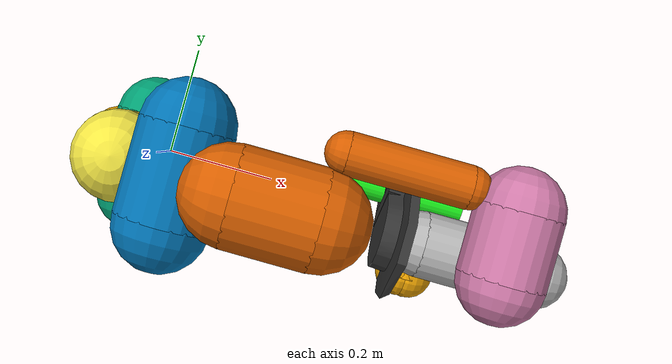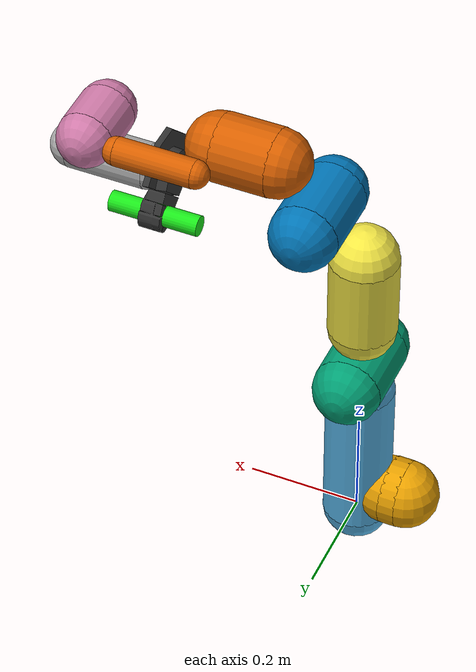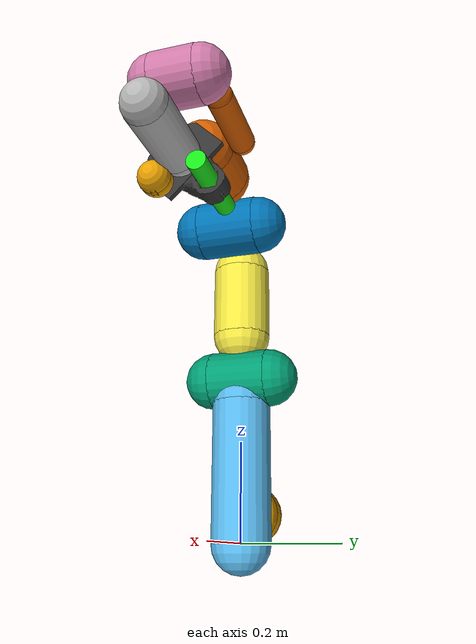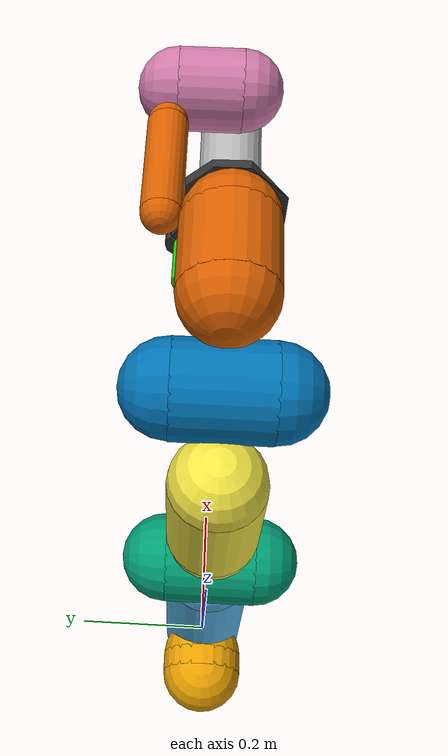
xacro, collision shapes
<?xml version="1.0" encoding="utf-8"?>
<robot xmlns:xacro="http://www.ros.org/wiki/xacro" name="panda">

  <xacro:include filename="$(find franka_description)/robots/panda_arm.urdf.xacro"/>

  <xacro:include filename="$(find reorientbot_ros)/robots/drl/suction.xacro"/>
  <xacro:suction_gripper ns="panda" rpy="${pi} 0 ${-pi/4}" xyz="0 0 0.0065" connected_to="panda_link8"/>

</robot>

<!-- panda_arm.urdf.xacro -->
<robot xmlns:xacro="http://www.ros.org/wiki/xacro" name="panda">
  <xacro:include filename="$(find franka_description)/robots/panda_arm.xacro" />
  <xacro:panda_arm safety_distance="0.00"/>
</robot>

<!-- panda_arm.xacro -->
<robot xmlns:xacro="http://www.ros.org/wiki/xacro" name="panda">
  <!-- safety_distance: Minimum safety distance in [m] by which the collision volumes are expanded and which is enforced during robot motions -->
  <!-- arm_id: Namespace of the panda arm. Serves to differentiate between arms in case of multiple instances. -->
  <xacro:macro name="panda_arm" params="arm_id:='panda' description_pkg:='franka_description' connected_to:='' xyz:='0 0 0' rpy:='0 0 0' safety_distance:=0">
    <xacro:unless value="${not connected_to}">
      <joint name="${arm_id}_joint_${connected_to}" type="fixed">
        <parent link="${connected_to}"/>
        <child link="${arm_id}_link0"/>
        <origin rpy="${rpy}" xyz="${xyz}"/>
      </joint>
    </xacro:unless>
    <link name="${arm_id}_link0">
      <visual>
        <geometry>
          <mesh filename="package://${description_pkg}/meshes/visual/link0.dae"/>
        </geometry>
      </visual>
      <collision>
        <origin xyz="-0.075 0 0.06" rpy="0 ${pi/2} 0"/>
        <geometry>
          <cylinder radius="${0.06+safety_distance}" length="0.03" />
        </geometry>
      </collision>
      <collision>
        <origin xyz="-0.06 0 0.06" rpy="0 0 0"/>
        <geometry>
          <sphere radius="${0.06+safety_distance}" />
        </geometry>
      </collision>
      <collision>
        <origin xyz="-0.09 0 0.06" rpy="0 0 0"/>
        <geometry>
          <sphere radius="${0.06+safety_distance}" />
        </geometry>
      </collision>
    </link>
    <link name="${arm_id}_link1">
      <visual>
        <geometry>
          <mesh filename="package://${description_pkg}/meshes/visual/link1.dae"/>
        </geometry>
      </visual>
      <collision>
        <origin xyz="0 0 -0.1915" rpy="0 0 0"/>
        <geometry>
          <cylinder radius="${0.06+safety_distance}" length="0.2830" />
        </geometry>
      </collision>
      <collision>
        <origin xyz="0 0 -0.333" rpy="0 0 0"/>
        <geometry>
          <sphere radius="${0.06+safety_distance}" />
        </geometry>
      </collision>
      <collision>
        <origin xyz="0 0 -0.05" rpy="0 0 0"/>
        <geometry>
          <sphere radius="${0.06+safety_distance}" />
        </geometry>
      </collision>
    </link>
    <joint name="${arm_id}_joint1" type="revolute">
      <safety_controller k_position="100.0" k_velocity="40.0" soft_lower_limit="-2.8973" soft_upper_limit="2.8973"/>
      <origin rpy="0 0 0" xyz="0 0 0.333"/>
      <parent link="${arm_id}_link0"/>
      <child link="${arm_id}_link1"/>
      <axis xyz="0 0 1"/>
      <limit effort="87" lower="-2.8973" upper="2.8973" velocity="2.1750"/>
    </joint>
    <link name="${arm_id}_link2">
      <visual>
        <geometry>
          <mesh filename="package://${description_pkg}/meshes/visual/link2.dae"/>
        </geometry>
      </visual>
      <collision>
        <origin xyz="0 0 0" rpy="0 0 0"/>
        <geometry>
          <cylinder radius="${0.06+safety_distance}" length="0.12" />
        </geometry>
      </collision>
      <collision>
        <origin xyz="0 0 -0.06" rpy="0 0 0"/>
        <geometry>
          <sphere radius="${0.06+safety_distance}" />
        </geometry>
      </collision>
      <collision>
        <origin xyz="0 0 0.06" rpy="0 0 0"/>
        <geometry>
          <sphere radius="${0.06+safety_distance}" />
        </geometry>
      </collision>
    </link>
    <joint name="${arm_id}_joint2" type="revolute">
      <safety_controller k_position="100.0" k_velocity="40.0" soft_lower_limit="-1.7628" soft_upper_limit="1.7628"/>
      <origin rpy="${-pi/2} 0 0" xyz="0 0 0"/>
      <parent link="${arm_id}_link1"/>
      <child link="${arm_id}_link2"/>
      <axis xyz="0 0 1"/>
      <limit effort="87" lower="-1.7628" upper="1.7628" velocity="2.1750"/>
    </joint>
    <link name="${arm_id}_link3">
      <visual>
        <geometry>
          <mesh filename="package://${description_pkg}/meshes/visual/link3.dae"/>
        </geometry>
      </visual>
      <collision>
        <origin xyz="0 0 -0.145" rpy="0 0 0"/>
        <geometry>
          <cylinder radius="${0.06+safety_distance}" length="0.15" />
        </geometry>
      </collision>
      <collision>
        <origin xyz="0 0 -0.22" rpy="0 0 0"/>
        <geometry>
          <sphere radius="${0.06+safety_distance}" />
        </geometry>
      </collision>
      <collision>
        <origin xyz="0 0 -0.07" rpy="0 0 0"/>
        <geometry>
          <sphere radius="${0.06+safety_distance}" />
        </geometry>
      </collision>
    </link>
    <joint name="${arm_id}_joint3" type="revolute">
      <safety_controller k_position="100.0" k_velocity="40.0" soft_lower_limit="-2.8973" soft_upper_limit="2.8973"/>
      <origin rpy="${pi/2} 0 0" xyz="0 -0.316 0"/>
      <parent link="${arm_id}_link2"/>
      <child link="${arm_id}_link3"/>
      <axis xyz="0 0 1"/>
      <limit effort="87" lower="-2.8973" upper="2.8973" velocity="2.1750"/>
    </joint>
    <link name="${arm_id}_link4">
      <visual>
        <geometry>
          <mesh filename="package://${description_pkg}/meshes/visual/link4.dae"/>
        </geometry>
      </visual>
      <collision>
        <origin xyz="0 0 0" rpy="0 0 0"/>
        <geometry>
          <cylinder radius="${0.06+safety_distance}" length="0.12" />
        </geometry>
      </collision>
      <collision>
        <origin xyz="0 0 0.06" rpy="0 0 0"/>
        <geometry>
          <sphere radius="${0.06+safety_distance}" />
        </geometry>
      </collision>
      <collision>
        <origin xyz="0 0 -0.06" rpy="0 0 0"/>
        <geometry>
          <sphere radius="${0.06+safety_distance}" />
        </geometry>
      </collision>
    </link>
    <joint name="${arm_id}_joint4" type="revolute">
      <safety_controller k_position="100.0" k_velocity="40.0" soft_lower_limit="-3.0718" soft_upper_limit="-0.0698"/>
      <origin rpy="${pi/2} 0 0" xyz="0.0825 0 0"/>
      <parent link="${arm_id}_link3"/>
      <child link="${arm_id}_link4"/>
      <axis xyz="0 0 1"/>
      <limit effort="87" lower="-3.0718" upper="-0.0698" velocity="2.1750"/>
    </joint>
    <link name="${arm_id}_link5">
      <visual>
        <geometry>
          <mesh filename="package://${description_pkg}/meshes/visual/link5.dae"/>
        </geometry>
      </visual>
      <collision>
        <origin xyz="0 0 -0.26" rpy="0 0 0"/>
        <geometry>
          <cylinder radius="${0.06+safety_distance}" length="0.1" />
        </geometry>
      </collision>
      <collision>
        <origin xyz="0 0 -0.31" rpy="0 0 0"/>
        <geometry>
          <sphere radius="${0.06+safety_distance}" />
        </geometry>
      </collision>
      <collision>
        <origin xyz="0 0 -0.21" rpy="0 0 0"/>
        <geometry>
          <sphere radius="${0.06+safety_distance}" />
        </geometry>
      </collision>
      <collision>
        <origin xyz="0 0.08 -0.13" rpy="0 0 0"/>
        <geometry>
          <cylinder radius="${0.025+safety_distance}" length="0.14" />
        </geometry>
      </collision>
      <collision>
        <origin xyz="0 0.08 -0.06" rpy="0 0 0"/>
        <geometry>
          <sphere radius="${0.025+safety_distance}" />
        </geometry>
      </collision>
      <collision>
        <origin xyz="0 0.08 -0.20" rpy="0 0 0"/>
        <geometry>
          <sphere radius="${0.025+safety_distance}" />
        </geometry>
      </collision>

    </link>
    <joint name="${arm_id}_joint5" type="revolute">
      <safety_controller k_position="100.0" k_velocity="40.0" soft_lower_limit="-2.8973" soft_upper_limit="2.8973"/>
      <origin rpy="${-pi/2} 0 0" xyz="-0.0825 0.384 0"/>
      <parent link="${arm_id}_link4"/>
      <child link="${arm_id}_link5"/>
      <axis xyz="0 0 1"/>
      <limit effort="12" lower="-2.8973" upper="2.8973" velocity="2.6100"/>
    </joint>
    <link name="${arm_id}_link6">
      <visual>
        <geometry>
          <mesh filename="package://${description_pkg}/meshes/visual/link6.dae"/>
        </geometry>
      </visual>
      <collision>
        <origin xyz="0 0 -0.03" rpy="0 0 0"/>
        <geometry>
          <cylinder radius="${0.05+safety_distance}" length="0.08" />
        </geometry>
      </collision>
      <collision>
        <origin xyz="0 0 0.01" rpy="0 0 0"/>
        <geometry>
          <sphere radius="${0.05+safety_distance}" />
        </geometry>
      </collision>
      <collision>
        <origin xyz="0 0 -0.07" rpy="0 0 0"/>
        <geometry>
          <sphere radius="${0.05+safety_distance}" />
        </geometry>
      </collision>
    </link>
    <joint name="${arm_id}_joint6" type="revolute">
      <safety_controller k_position="100.0" k_velocity="40.0" soft_lower_limit="-0.0175" soft_upper_limit="3.7525"/>
      <origin rpy="${pi/2} 0 0" xyz="0 0 0"/>
      <parent link="${arm_id}_link5"/>
      <child link="${arm_id}_link6"/>
      <axis xyz="0 0 1"/>
      <limit effort="12" lower="-0.0175" upper="3.7525" velocity="2.6100"/>
    </joint>
    <link name="${arm_id}_link7">
      <visual>
        <geometry>
          <mesh filename="package://${description_pkg}/meshes/visual/link7.dae"/>
        </geometry>
      </visual>
      <collision>
        <origin xyz="0 0 0.01" rpy="0 0 0"/>
        <geometry>
          <cylinder radius="${0.04+safety_distance}" length="0.14" />
        </geometry>
      </collision>
      <collision>
        <origin xyz="0 0 0.08" rpy="0 0 0"/>
        <geometry>
          <sphere radius="${0.04+safety_distance}"  />
        </geometry>
      </collision>
      <collision>
        <origin xyz="0 0 -0.06" rpy="0 0 0"/>
        <geometry>
          <sphere radius="${0.04+safety_distance}"  />
        </geometry>
      </collision>
    </link>
    <joint name="${arm_id}_joint7" type="revolute">
      <safety_controller k_position="100.0" k_velocity="40.0" soft_lower_limit="-2.8973" soft_upper_limit="2.8973"/>
      <origin rpy="${pi/2} 0 0" xyz="0.088 0 0"/>
      <parent link="${arm_id}_link6"/>
      <child link="${arm_id}_link7"/>
      <axis xyz="0 0 1"/>
      <limit effort="12" lower="-2.8973" upper="2.8973" velocity="2.6100"/>
    </joint>
    <link name="${arm_id}_link8">
      <collision>
        <origin xyz="0.0424 0.0424 -0.0250" rpy="${pi} ${pi/2} ${pi/2}"/>
        <geometry>
          <cylinder radius="${0.03+safety_distance}"  length="0.01" />
        </geometry>
      </collision>
      <collision>
        <origin xyz="0.0424 0.0424 -0.02" rpy="0 0 0"/>
        <geometry>
          <sphere radius="${0.03+safety_distance}"  />
        </geometry>
      </collision>
      <collision>
        <origin xyz="0.0424 0.0424 -0.03" rpy="0 0 0"/>
        <geometry>
          <sphere radius="${0.03+safety_distance}"  />
        </geometry>
      </collision>
    </link>
    <joint name="${arm_id}_joint8" type="fixed">
      <origin rpy="0 0 0" xyz="0 0 0.107"/>
      <parent link="${arm_id}_link7"/>
      <child link="${arm_id}_link8"/>
    </joint>
  </xacro:macro>
</robot>

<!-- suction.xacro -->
<robot xmlns:xacro="http://www.ros.org/wiki/xacro" name="suction_gripper">

  <material name="black">
    <color rgba="0.2 0.2 0.2 1"/>
  </material>

  <material name="green">
    <color rgba="0.1 0.9 0.1 1"/>
  </material>

  <xacro:macro name="suction_gripper" params="connected_to:='' ns:='' rpy:='0 0 0' xyz:='0 0 0' ">

    <xacro:unless value="${connected_to == ''}">
      <joint name="${ns}_suction_gripper_joint" type="fixed">
        <parent link="${connected_to}"/>
        <child link="${ns}_suction_gripper"/>
        <origin xyz="${xyz}" rpy="${rpy}"/>
      </joint>
    </xacro:unless>

    <link name="${ns}_suction_gripper">
      <visual>
        <geometry>
          <mesh filename="package://reorientbot_ros/robots/drl/meshes/visual/suction_mount.obj"/>
        </geometry>
        <material name="black"/>
      </visual>
      <collision>
        <geometry>
          <mesh filename="package://reorientbot_ros/robots/drl/meshes/collision/suction_mount.obj"/>
        </geometry>
      </collision>
    </link>

    <link name="tipLink">
      <visual>
        <geometry>
          <cylinder length="0.10" radius="0.018"/>
        </geometry>
        <origin xyz="0 0 -0.05"/>
        <material name="green"/>
      </visual>
      <collision>
        <geometry>
          <cylinder length="0.16" radius="0.018"/>
        </geometry>
        <origin xyz="0 0 -0.08"/>
      </collision>
    </link>

    <joint name="${ns}_suction_mount_to_cup_joint" type="fixed">
      <parent link="${ns}_suction_gripper"/>
      <child link="tipLink"/>
      <origin xyz="0.072 0 -0.08" rpy="${pi} 0 0"/>
    </joint>

  </xacro:macro>
</robot>
